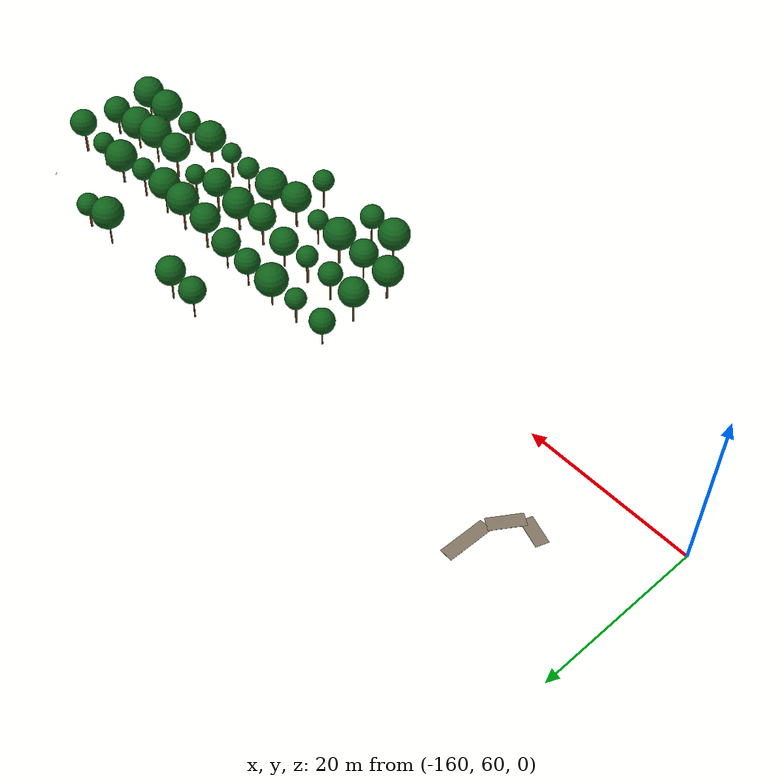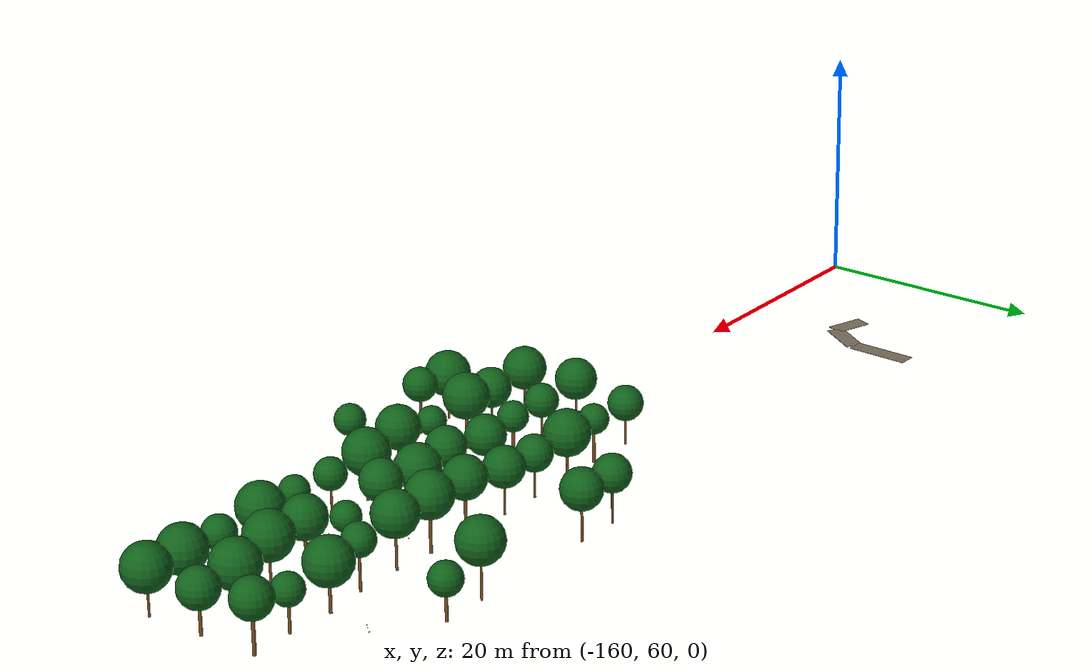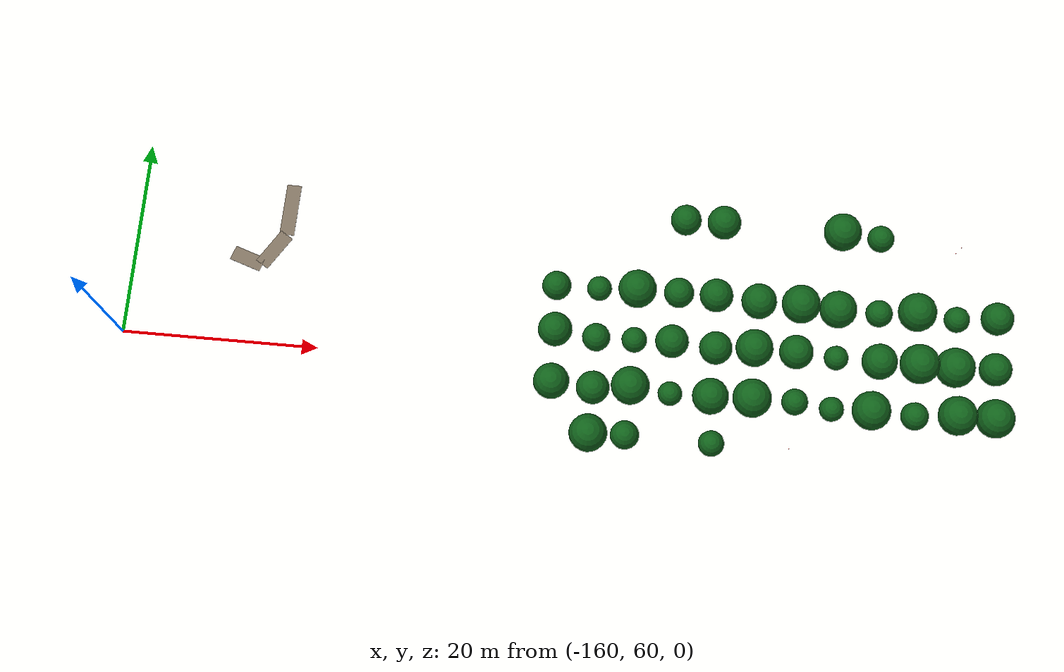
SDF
<sdf version="1.9">
 <world name="cheongsong_orchard">
  <model name="road_73">
   <static>true</static>
   <pose>-144.7 74.4 0.02 0 0 -1.5940</pose>
   <link name="link">
    <collision name="collision">
     <geometry><box><size>5.4 1.5 0.04</size></box></geometry>
     <surface><friction><ode><mu>0.9</mu><mu2>0.9</mu2></ode></friction></surface>
    </collision>
    <visual name="visual">
     <geometry><box><size>5.4 1.5 0.04</size></box></geometry>
     <material><ambient>0.4 0.35 0.28 1</ambient><diffuse>0.5 0.45 0.38 1</diffuse></material>
    </visual>
   </link>
  </model>
  <model name="road_74">
   <static>true</static>
   <pose>-145.8 70.0 0.02 0 0 -2.1415</pose>
   <link name="link">
    <collision name="collision">
     <geometry><box><size>4.0 1.5 0.04</size></box></geometry>
     <surface><friction><ode><mu>0.9</mu><mu2>0.9</mu2></ode></friction></surface>
    </collision>
    <visual name="visual">
     <geometry><box><size>4.0 1.5 0.04</size></box></geometry>
     <material><ambient>0.4 0.35 0.28 1</ambient><diffuse>0.5 0.45 0.38 1</diffuse></material>
    </visual>
   </link>
  </model>
  <model name="road_75">
   <static>true</static>
   <pose>-148.4 68.8 0.02 0 0 2.8233</pose>
   <link name="link">
    <collision name="collision">
     <geometry><box><size>3.3 1.5 0.04</size></box></geometry>
     <surface><friction><ode><mu>0.9</mu><mu2>0.9</mu2></ode></friction></surface>
    </collision>
    <visual name="visual">
     <geometry><box><size>3.3 1.5 0.04</size></box></geometry>
     <material><ambient>0.4 0.35 0.28 1</ambient><diffuse>0.5 0.45 0.38 1</diffuse></material>
    </visual>
   </link>
  </model>
  <model name="apple_tree_1745">
   <static>true</static>
   <pose>-111.97 53.02 0 0 0 0</pose>
   <link name="link">
    <collision name="trunk_col">
     <pose>0 0 1.05 0 0 0</pose>
     <geometry><cylinder><radius>0.106</radius><length>2.11</length></cylinder></geometry>
    </collision>
    <visual name="trunk_vis">
     <pose>0 0 1.05 0 0 0</pose>
     <geometry><cylinder><radius>0.106</radius><length>2.11</length></cylinder></geometry>
     <material><ambient>0.35 0.22 0.08 1</ambient><diffuse>0.45 0.30 0.12 1</diffuse></material>
    </visual>
    <collision name="canopy_col">
     <pose>0 0 4.01 0 0 0</pose>
     <geometry><sphere><radius>1.90</radius></sphere></geometry>
    </collision>
    <visual name="canopy_vis">
     <pose>0 0 4.01 0 0 0</pose>
     <geometry><sphere><radius>1.90</radius></sphere></geometry>
     <material><ambient>0.04 0.28 0.06 1</ambient><diffuse>0.06 0.38 0.10 1</diffuse></material>
    </visual>
   </link>
  </model>
  <model name="apple_tree_1746">
   <static>true</static>
   <pose>-108.38 53.07 0 0 0 0</pose>
   <link name="link">
    <collision name="trunk_col">
     <pose>0 0 1.42 0 0 0</pose>
     <geometry><cylinder><radius>0.103</radius><length>2.85</length></cylinder></geometry>
    </collision>
    <visual name="trunk_vis">
     <pose>0 0 1.42 0 0 0</pose>
     <geometry><cylinder><radius>0.103</radius><length>2.85</length></cylinder></geometry>
     <material><ambient>0.35 0.22 0.08 1</ambient><diffuse>0.45 0.30 0.12 1</diffuse></material>
    </visual>
    <collision name="canopy_col">
     <pose>0 0 4.28 0 0 0</pose>
     <geometry><sphere><radius>1.43</radius></sphere></geometry>
    </collision>
    <visual name="canopy_vis">
     <pose>0 0 4.28 0 0 0</pose>
     <geometry><sphere><radius>1.43</radius></sphere></geometry>
     <material><ambient>0.04 0.28 0.06 1</ambient><diffuse>0.06 0.38 0.10 1</diffuse></material>
    </visual>
   </link>
  </model>
  <model name="apple_tree_1748">
   <static>true</static>
   <pose>-99.90 52.99 0 0 0 0</pose>
   <link name="link">
    <collision name="trunk_col">
     <pose>0 0 1.45 0 0 0</pose>
     <geometry><cylinder><radius>0.115</radius><length>2.90</length></cylinder></geometry>
    </collision>
    <visual name="trunk_vis">
     <pose>0 0 1.45 0 0 0</pose>
     <geometry><cylinder><radius>0.115</radius><length>2.90</length></cylinder></geometry>
     <material><ambient>0.35 0.22 0.08 1</ambient><diffuse>0.45 0.30 0.12 1</diffuse></material>
    </visual>
    <collision name="canopy_col">
     <pose>0 0 4.19 0 0 0</pose>
     <geometry><sphere><radius>1.29</radius></sphere></geometry>
    </collision>
    <visual name="canopy_vis">
     <pose>0 0 4.19 0 0 0</pose>
     <geometry><sphere><radius>1.29</radius></sphere></geometry>
     <material><ambient>0.04 0.28 0.06 1</ambient><diffuse>0.06 0.38 0.10 1</diffuse></material>
    </visual>
   </link>
  </model>
  <model name="apple_tree_1800">
   <static>true</static>
   <pose>-116.02 57.81 0 0 0 0</pose>
   <link name="link">
    <collision name="trunk_col">
     <pose>0 0 1.26 0 0 0</pose>
     <geometry><cylinder><radius>0.124</radius><length>2.51</length></cylinder></geometry>
    </collision>
    <visual name="trunk_vis">
     <pose>0 0 1.26 0 0 0</pose>
     <geometry><cylinder><radius>0.124</radius><length>2.51</length></cylinder></geometry>
     <material><ambient>0.35 0.22 0.08 1</ambient><diffuse>0.45 0.30 0.12 1</diffuse></material>
    </visual>
    <collision name="canopy_col">
     <pose>0 0 4.30 0 0 0</pose>
     <geometry><sphere><radius>1.79</radius></sphere></geometry>
    </collision>
    <visual name="canopy_vis">
     <pose>0 0 4.30 0 0 0</pose>
     <geometry><sphere><radius>1.79</radius></sphere></geometry>
     <material><ambient>0.04 0.28 0.06 1</ambient><diffuse>0.06 0.38 0.10 1</diffuse></material>
    </visual>
   </link>
  </model>
  <model name="apple_tree_1801">
   <static>true</static>
   <pose>-111.89 57.60 0 0 0 0</pose>
   <link name="link">
    <collision name="trunk_col">
     <pose>0 0 1.14 0 0 0</pose>
     <geometry><cylinder><radius>0.093</radius><length>2.27</length></cylinder></geometry>
    </collision>
    <visual name="trunk_vis">
     <pose>0 0 1.14 0 0 0</pose>
     <geometry><cylinder><radius>0.093</radius><length>2.27</length></cylinder></geometry>
     <material><ambient>0.35 0.22 0.08 1</ambient><diffuse>0.45 0.30 0.12 1</diffuse></material>
    </visual>
    <collision name="canopy_col">
     <pose>0 0 3.93 0 0 0</pose>
     <geometry><sphere><radius>1.66</radius></sphere></geometry>
    </collision>
    <visual name="canopy_vis">
     <pose>0 0 3.93 0 0 0</pose>
     <geometry><sphere><radius>1.66</radius></sphere></geometry>
     <material><ambient>0.04 0.28 0.06 1</ambient><diffuse>0.06 0.38 0.10 1</diffuse></material>
    </visual>
   </link>
  </model>
  <model name="apple_tree_1802">
   <static>true</static>
   <pose>-108.22 57.98 0 0 0 0</pose>
   <link name="link">
    <collision name="trunk_col">
     <pose>0 0 1.34 0 0 0</pose>
     <geometry><cylinder><radius>0.146</radius><length>2.67</length></cylinder></geometry>
    </collision>
    <visual name="trunk_vis">
     <pose>0 0 1.34 0 0 0</pose>
     <geometry><cylinder><radius>0.146</radius><length>2.67</length></cylinder></geometry>
     <material><ambient>0.35 0.22 0.08 1</ambient><diffuse>0.45 0.30 0.12 1</diffuse></material>
    </visual>
    <collision name="canopy_col">
     <pose>0 0 4.58 0 0 0</pose>
     <geometry><sphere><radius>1.91</radius></sphere></geometry>
    </collision>
    <visual name="canopy_vis">
     <pose>0 0 4.58 0 0 0</pose>
     <geometry><sphere><radius>1.91</radius></sphere></geometry>
     <material><ambient>0.04 0.28 0.06 1</ambient><diffuse>0.06 0.38 0.10 1</diffuse></material>
    </visual>
   </link>
  </model>
  <model name="apple_tree_1803">
   <static>true</static>
   <pose>-104.25 57.69 0 0 0 0</pose>
   <link name="link">
    <collision name="trunk_col">
     <pose>0 0 1.28 0 0 0</pose>
     <geometry><cylinder><radius>0.107</radius><length>2.56</length></cylinder></geometry>
    </collision>
    <visual name="trunk_vis">
     <pose>0 0 1.28 0 0 0</pose>
     <geometry><cylinder><radius>0.107</radius><length>2.56</length></cylinder></geometry>
     <material><ambient>0.35 0.22 0.08 1</ambient><diffuse>0.45 0.30 0.12 1</diffuse></material>
    </visual>
    <collision name="canopy_col">
     <pose>0 0 3.76 0 0 0</pose>
     <geometry><sphere><radius>1.21</radius></sphere></geometry>
    </collision>
    <visual name="canopy_vis">
     <pose>0 0 3.76 0 0 0</pose>
     <geometry><sphere><radius>1.21</radius></sphere></geometry>
     <material><ambient>0.04 0.28 0.06 1</ambient><diffuse>0.06 0.38 0.10 1</diffuse></material>
    </visual>
   </link>
  </model>
  <model name="apple_tree_1804">
   <static>true</static>
   <pose>-100.30 57.60 0 0 0 0</pose>
   <link name="link">
    <collision name="trunk_col">
     <pose>0 0 1.39 0 0 0</pose>
     <geometry><cylinder><radius>0.121</radius><length>2.78</length></cylinder></geometry>
    </collision>
    <visual name="trunk_vis">
     <pose>0 0 1.39 0 0 0</pose>
     <geometry><cylinder><radius>0.121</radius><length>2.78</length></cylinder></geometry>
     <material><ambient>0.35 0.22 0.08 1</ambient><diffuse>0.45 0.30 0.12 1</diffuse></material>
    </visual>
    <collision name="canopy_col">
     <pose>0 0 4.60 0 0 0</pose>
     <geometry><sphere><radius>1.81</radius></sphere></geometry>
    </collision>
    <visual name="canopy_vis">
     <pose>0 0 4.60 0 0 0</pose>
     <geometry><sphere><radius>1.81</radius></sphere></geometry>
     <material><ambient>0.04 0.28 0.06 1</ambient><diffuse>0.06 0.38 0.10 1</diffuse></material>
    </visual>
   </link>
  </model>
  <model name="apple_tree_1805">
   <static>true</static>
   <pose>-96.17 57.90 0 0 0 0</pose>
   <link name="link">
    <collision name="trunk_col">
     <pose>0 0 1.07 0 0 0</pose>
     <geometry><cylinder><radius>0.138</radius><length>2.15</length></cylinder></geometry>
    </collision>
    <visual name="trunk_vis">
     <pose>0 0 1.07 0 0 0</pose>
     <geometry><cylinder><radius>0.138</radius><length>2.15</length></cylinder></geometry>
     <material><ambient>0.35 0.22 0.08 1</ambient><diffuse>0.45 0.30 0.12 1</diffuse></material>
    </visual>
    <collision name="canopy_col">
     <pose>0 0 4.09 0 0 0</pose>
     <geometry><sphere><radius>1.94</radius></sphere></geometry>
    </collision>
    <visual name="canopy_vis">
     <pose>0 0 4.09 0 0 0</pose>
     <geometry><sphere><radius>1.94</radius></sphere></geometry>
     <material><ambient>0.04 0.28 0.06 1</ambient><diffuse>0.06 0.38 0.10 1</diffuse></material>
    </visual>
   </link>
  </model>
  <model name="apple_tree_1806">
   <static>true</static>
   <pose>-91.95 57.94 0 0 0 0</pose>
   <link name="link">
    <collision name="trunk_col">
     <pose>0 0 1.26 0 0 0</pose>
     <geometry><cylinder><radius>0.093</radius><length>2.51</length></cylinder></geometry>
    </collision>
    <visual name="trunk_vis">
     <pose>0 0 1.26 0 0 0</pose>
     <geometry><cylinder><radius>0.093</radius><length>2.51</length></cylinder></geometry>
     <material><ambient>0.35 0.22 0.08 1</ambient><diffuse>0.45 0.30 0.12 1</diffuse></material>
    </visual>
    <collision name="canopy_col">
     <pose>0 0 3.83 0 0 0</pose>
     <geometry><sphere><radius>1.32</radius></sphere></geometry>
    </collision>
    <visual name="canopy_vis">
     <pose>0 0 3.83 0 0 0</pose>
     <geometry><sphere><radius>1.32</radius></sphere></geometry>
     <material><ambient>0.04 0.28 0.06 1</ambient><diffuse>0.06 0.38 0.10 1</diffuse></material>
    </visual>
   </link>
  </model>
  <model name="apple_tree_1807">
   <static>true</static>
   <pose>-88.30 57.57 0 0 0 0</pose>
   <link name="link">
    <collision name="trunk_col">
     <pose>0 0 1.24 0 0 0</pose>
     <geometry><cylinder><radius>0.146</radius><length>2.47</length></cylinder></geometry>
    </collision>
    <visual name="trunk_vis">
     <pose>0 0 1.24 0 0 0</pose>
     <geometry><cylinder><radius>0.146</radius><length>2.47</length></cylinder></geometry>
     <material><ambient>0.35 0.22 0.08 1</ambient><diffuse>0.45 0.30 0.12 1</diffuse></material>
    </visual>
    <collision name="canopy_col">
     <pose>0 0 3.70 0 0 0</pose>
     <geometry><sphere><radius>1.23</radius></sphere></geometry>
    </collision>
    <visual name="canopy_vis">
     <pose>0 0 3.70 0 0 0</pose>
     <geometry><sphere><radius>1.23</radius></sphere></geometry>
     <material><ambient>0.04 0.28 0.06 1</ambient><diffuse>0.06 0.38 0.10 1</diffuse></material>
    </visual>
   </link>
  </model>
  <model name="apple_tree_1808">
   <static>true</static>
   <pose>-84.41 57.72 0 0 0 0</pose>
   <link name="link">
    <collision name="trunk_col">
     <pose>0 0 1.01 0 0 0</pose>
     <geometry><cylinder><radius>0.141</radius><length>2.02</length></cylinder></geometry>
    </collision>
    <visual name="trunk_vis">
     <pose>0 0 1.01 0 0 0</pose>
     <geometry><cylinder><radius>0.141</radius><length>2.02</length></cylinder></geometry>
     <material><ambient>0.35 0.22 0.08 1</ambient><diffuse>0.45 0.30 0.12 1</diffuse></material>
    </visual>
    <collision name="canopy_col">
     <pose>0 0 3.96 0 0 0</pose>
     <geometry><sphere><radius>1.94</radius></sphere></geometry>
    </collision>
    <visual name="canopy_vis">
     <pose>0 0 3.96 0 0 0</pose>
     <geometry><sphere><radius>1.94</radius></sphere></geometry>
     <material><ambient>0.04 0.28 0.06 1</ambient><diffuse>0.06 0.38 0.10 1</diffuse></material>
    </visual>
   </link>
  </model>
  <model name="apple_tree_1809">
   <static>true</static>
   <pose>-80.09 57.63 0 0 0 0</pose>
   <link name="link">
    <collision name="trunk_col">
     <pose>0 0 1.05 0 0 0</pose>
     <geometry><cylinder><radius>0.149</radius><length>2.11</length></cylinder></geometry>
    </collision>
    <visual name="trunk_vis">
     <pose>0 0 1.05 0 0 0</pose>
     <geometry><cylinder><radius>0.149</radius><length>2.11</length></cylinder></geometry>
     <material><ambient>0.35 0.22 0.08 1</ambient><diffuse>0.45 0.30 0.12 1</diffuse></material>
    </visual>
    <collision name="canopy_col">
     <pose>0 0 3.50 0 0 0</pose>
     <geometry><sphere><radius>1.39</radius></sphere></geometry>
    </collision>
    <visual name="canopy_vis">
     <pose>0 0 3.50 0 0 0</pose>
     <geometry><sphere><radius>1.39</radius></sphere></geometry>
     <material><ambient>0.04 0.28 0.06 1</ambient><diffuse>0.06 0.38 0.10 1</diffuse></material>
    </visual>
   </link>
  </model>
  <model name="apple_tree_1810">
   <static>true</static>
   <pose>-75.94 57.97 0 0 0 0</pose>
   <link name="link">
    <collision name="trunk_col">
     <pose>0 0 0.99 0 0 0</pose>
     <geometry><cylinder><radius>0.141</radius><length>1.98</length></cylinder></geometry>
    </collision>
    <visual name="trunk_vis">
     <pose>0 0 0.99 0 0 0</pose>
     <geometry><cylinder><radius>0.141</radius><length>1.98</length></cylinder></geometry>
     <material><ambient>0.35 0.22 0.08 1</ambient><diffuse>0.45 0.30 0.12 1</diffuse></material>
    </visual>
    <collision name="canopy_col">
     <pose>0 0 3.93 0 0 0</pose>
     <geometry><sphere><radius>1.96</radius></sphere></geometry>
    </collision>
    <visual name="canopy_vis">
     <pose>0 0 3.93 0 0 0</pose>
     <geometry><sphere><radius>1.96</radius></sphere></geometry>
     <material><ambient>0.04 0.28 0.06 1</ambient><diffuse>0.06 0.38 0.10 1</diffuse></material>
    </visual>
   </link>
  </model>
  <model name="apple_tree_1811">
   <static>true</static>
   <pose>-72.26 58.00 0 0 0 0</pose>
   <link name="link">
    <collision name="trunk_col">
     <pose>0 0 1.02 0 0 0</pose>
     <geometry><cylinder><radius>0.092</radius><length>2.04</length></cylinder></geometry>
    </collision>
    <visual name="trunk_vis">
     <pose>0 0 1.02 0 0 0</pose>
     <geometry><cylinder><radius>0.092</radius><length>2.04</length></cylinder></geometry>
     <material><ambient>0.35 0.22 0.08 1</ambient><diffuse>0.45 0.30 0.12 1</diffuse></material>
    </visual>
    <collision name="canopy_col">
     <pose>0 0 3.97 0 0 0</pose>
     <geometry><sphere><radius>1.93</radius></sphere></geometry>
    </collision>
    <visual name="canopy_vis">
     <pose>0 0 3.97 0 0 0</pose>
     <geometry><sphere><radius>1.93</radius></sphere></geometry>
     <material><ambient>0.04 0.28 0.06 1</ambient><diffuse>0.06 0.38 0.10 1</diffuse></material>
    </visual>
   </link>
  </model>
  <model name="apple_tree_1856">
   <static>true</static>
   <pose>-116.09 63.01 0 0 0 0</pose>
   <link name="link">
    <collision name="trunk_col">
     <pose>0 0 1.44 0 0 0</pose>
     <geometry><cylinder><radius>0.110</radius><length>2.89</length></cylinder></geometry>
    </collision>
    <visual name="trunk_vis">
     <pose>0 0 1.44 0 0 0</pose>
     <geometry><cylinder><radius>0.110</radius><length>2.89</length></cylinder></geometry>
     <material><ambient>0.35 0.22 0.08 1</ambient><diffuse>0.45 0.30 0.12 1</diffuse></material>
    </visual>
    <collision name="canopy_col">
     <pose>0 0 4.60 0 0 0</pose>
     <geometry><sphere><radius>1.71</radius></sphere></geometry>
    </collision>
    <visual name="canopy_vis">
     <pose>0 0 4.60 0 0 0</pose>
     <geometry><sphere><radius>1.71</radius></sphere></geometry>
     <material><ambient>0.04 0.28 0.06 1</ambient><diffuse>0.06 0.38 0.10 1</diffuse></material>
    </visual>
   </link>
  </model>
  <model name="apple_tree_1857">
   <static>true</static>
   <pose>-111.97 62.68 0 0 0 0</pose>
   <link name="link">
    <collision name="trunk_col">
     <pose>0 0 1.33 0 0 0</pose>
     <geometry><cylinder><radius>0.099</radius><length>2.66</length></cylinder></geometry>
    </collision>
    <visual name="trunk_vis">
     <pose>0 0 1.33 0 0 0</pose>
     <geometry><cylinder><radius>0.099</radius><length>2.66</length></cylinder></geometry>
     <material><ambient>0.35 0.22 0.08 1</ambient><diffuse>0.45 0.30 0.12 1</diffuse></material>
    </visual>
    <collision name="canopy_col">
     <pose>0 0 4.06 0 0 0</pose>
     <geometry><sphere><radius>1.40</radius></sphere></geometry>
    </collision>
    <visual name="canopy_vis">
     <pose>0 0 4.06 0 0 0</pose>
     <geometry><sphere><radius>1.40</radius></sphere></geometry>
     <material><ambient>0.04 0.28 0.06 1</ambient><diffuse>0.06 0.38 0.10 1</diffuse></material>
    </visual>
   </link>
  </model>
  <model name="apple_tree_1858">
   <static>true</static>
   <pose>-108.18 62.76 0 0 0 0</pose>
   <link name="link">
    <collision name="trunk_col">
     <pose>0 0 1.38 0 0 0</pose>
     <geometry><cylinder><radius>0.149</radius><length>2.77</length></cylinder></geometry>
    </collision>
    <visual name="trunk_vis">
     <pose>0 0 1.38 0 0 0</pose>
     <geometry><cylinder><radius>0.149</radius><length>2.77</length></cylinder></geometry>
     <material><ambient>0.35 0.22 0.08 1</ambient><diffuse>0.45 0.30 0.12 1</diffuse></material>
    </visual>
    <collision name="canopy_col">
     <pose>0 0 4.03 0 0 0</pose>
     <geometry><sphere><radius>1.27</radius></sphere></geometry>
    </collision>
    <visual name="canopy_vis">
     <pose>0 0 4.03 0 0 0</pose>
     <geometry><sphere><radius>1.27</radius></sphere></geometry>
     <material><ambient>0.04 0.28 0.06 1</ambient><diffuse>0.06 0.38 0.10 1</diffuse></material>
    </visual>
   </link>
  </model>
  <model name="apple_tree_1859">
   <static>true</static>
   <pose>-104.43 62.99 0 0 0 0</pose>
   <link name="link">
    <collision name="trunk_col">
     <pose>0 0 1.09 0 0 0</pose>
     <geometry><cylinder><radius>0.115</radius><length>2.19</length></cylinder></geometry>
    </collision>
    <visual name="trunk_vis">
     <pose>0 0 1.09 0 0 0</pose>
     <geometry><cylinder><radius>0.115</radius><length>2.19</length></cylinder></geometry>
     <material><ambient>0.35 0.22 0.08 1</ambient><diffuse>0.45 0.30 0.12 1</diffuse></material>
    </visual>
    <collision name="canopy_col">
     <pose>0 0 3.86 0 0 0</pose>
     <geometry><sphere><radius>1.67</radius></sphere></geometry>
    </collision>
    <visual name="canopy_vis">
     <pose>0 0 3.86 0 0 0</pose>
     <geometry><sphere><radius>1.67</radius></sphere></geometry>
     <material><ambient>0.04 0.28 0.06 1</ambient><diffuse>0.06 0.38 0.10 1</diffuse></material>
    </visual>
   </link>
  </model>
  <model name="apple_tree_1860">
   <static>true</static>
   <pose>-100.09 62.57 0 0 0 0</pose>
   <link name="link">
    <collision name="trunk_col">
     <pose>0 0 1.36 0 0 0</pose>
     <geometry><cylinder><radius>0.130</radius><length>2.71</length></cylinder></geometry>
    </collision>
    <visual name="trunk_vis">
     <pose>0 0 1.36 0 0 0</pose>
     <geometry><cylinder><radius>0.130</radius><length>2.71</length></cylinder></geometry>
     <material><ambient>0.35 0.22 0.08 1</ambient><diffuse>0.45 0.30 0.12 1</diffuse></material>
    </visual>
    <collision name="canopy_col">
     <pose>0 0 4.36 0 0 0</pose>
     <geometry><sphere><radius>1.65</radius></sphere></geometry>
    </collision>
    <visual name="canopy_vis">
     <pose>0 0 4.36 0 0 0</pose>
     <geometry><sphere><radius>1.65</radius></sphere></geometry>
     <material><ambient>0.04 0.28 0.06 1</ambient><diffuse>0.06 0.38 0.10 1</diffuse></material>
    </visual>
   </link>
  </model>
  <model name="apple_tree_1861">
   <static>true</static>
   <pose>-96.25 62.96 0 0 0 0</pose>
   <link name="link">
    <collision name="trunk_col">
     <pose>0 0 1.14 0 0 0</pose>
     <geometry><cylinder><radius>0.135</radius><length>2.29</length></cylinder></geometry>
    </collision>
    <visual name="trunk_vis">
     <pose>0 0 1.14 0 0 0</pose>
     <geometry><cylinder><radius>0.135</radius><length>2.29</length></cylinder></geometry>
     <material><ambient>0.35 0.22 0.08 1</ambient><diffuse>0.45 0.30 0.12 1</diffuse></material>
    </visual>
    <collision name="canopy_col">
     <pose>0 0 4.17 0 0 0</pose>
     <geometry><sphere><radius>1.88</radius></sphere></geometry>
    </collision>
    <visual name="canopy_vis">
     <pose>0 0 4.17 0 0 0</pose>
     <geometry><sphere><radius>1.88</radius></sphere></geometry>
     <material><ambient>0.04 0.28 0.06 1</ambient><diffuse>0.06 0.38 0.10 1</diffuse></material>
    </visual>
   </link>
  </model>
  <model name="apple_tree_1862">
   <static>true</static>
   <pose>-92.15 62.82 0 0 0 0</pose>
   <link name="link">
    <collision name="trunk_col">
     <pose>0 0 1.43 0 0 0</pose>
     <geometry><cylinder><radius>0.137</radius><length>2.87</length></cylinder></geometry>
    </collision>
    <visual name="trunk_vis">
     <pose>0 0 1.43 0 0 0</pose>
     <geometry><cylinder><radius>0.137</radius><length>2.87</length></cylinder></geometry>
     <material><ambient>0.35 0.22 0.08 1</ambient><diffuse>0.45 0.30 0.12 1</diffuse></material>
    </visual>
    <collision name="canopy_col">
     <pose>0 0 4.57 0 0 0</pose>
     <geometry><sphere><radius>1.70</radius></sphere></geometry>
    </collision>
    <visual name="canopy_vis">
     <pose>0 0 4.57 0 0 0</pose>
     <geometry><sphere><radius>1.70</radius></sphere></geometry>
     <material><ambient>0.04 0.28 0.06 1</ambient><diffuse>0.06 0.38 0.10 1</diffuse></material>
    </visual>
   </link>
  </model>
  <model name="apple_tree_1863">
   <static>true</static>
   <pose>-88.02 62.91 0 0 0 0</pose>
   <link name="link">
    <collision name="trunk_col">
     <pose>0 0 0.99 0 0 0</pose>
     <geometry><cylinder><radius>0.120</radius><length>1.97</length></cylinder></geometry>
    </collision>
    <visual name="trunk_vis">
     <pose>0 0 0.99 0 0 0</pose>
     <geometry><cylinder><radius>0.120</radius><length>1.97</length></cylinder></geometry>
     <material><ambient>0.35 0.22 0.08 1</ambient><diffuse>0.45 0.30 0.12 1</diffuse></material>
    </visual>
    <collision name="canopy_col">
     <pose>0 0 3.19 0 0 0</pose>
     <geometry><sphere><radius>1.22</radius></sphere></geometry>
    </collision>
    <visual name="canopy_vis">
     <pose>0 0 3.19 0 0 0</pose>
     <geometry><sphere><radius>1.22</radius></sphere></geometry>
     <material><ambient>0.04 0.28 0.06 1</ambient><diffuse>0.06 0.38 0.10 1</diffuse></material>
    </visual>
   </link>
  </model>
  <model name="apple_tree_1864">
   <static>true</static>
   <pose>-83.92 62.57 0 0 0 0</pose>
   <link name="link">
    <collision name="trunk_col">
     <pose>0 0 1.42 0 0 0</pose>
     <geometry><cylinder><radius>0.136</radius><length>2.85</length></cylinder></geometry>
    </collision>
    <visual name="trunk_vis">
     <pose>0 0 1.42 0 0 0</pose>
     <geometry><cylinder><radius>0.136</radius><length>2.85</length></cylinder></geometry>
     <material><ambient>0.35 0.22 0.08 1</ambient><diffuse>0.45 0.30 0.12 1</diffuse></material>
    </visual>
    <collision name="canopy_col">
     <pose>0 0 4.63 0 0 0</pose>
     <geometry><sphere><radius>1.78</radius></sphere></geometry>
    </collision>
    <visual name="canopy_vis">
     <pose>0 0 4.63 0 0 0</pose>
     <geometry><sphere><radius>1.78</radius></sphere></geometry>
     <material><ambient>0.04 0.28 0.06 1</ambient><diffuse>0.06 0.38 0.10 1</diffuse></material>
    </visual>
   </link>
  </model>
  <model name="apple_tree_1865">
   <static>true</static>
   <pose>-79.98 62.66 0 0 0 0</pose>
   <link name="link">
    <collision name="trunk_col">
     <pose>0 0 1.37 0 0 0</pose>
     <geometry><cylinder><radius>0.104</radius><length>2.75</length></cylinder></geometry>
    </collision>
    <visual name="trunk_vis">
     <pose>0 0 1.37 0 0 0</pose>
     <geometry><cylinder><radius>0.104</radius><length>2.75</length></cylinder></geometry>
     <material><ambient>0.35 0.22 0.08 1</ambient><diffuse>0.45 0.30 0.12 1</diffuse></material>
    </visual>
    <collision name="canopy_col">
     <pose>0 0 4.73 0 0 0</pose>
     <geometry><sphere><radius>1.98</radius></sphere></geometry>
    </collision>
    <visual name="canopy_vis">
     <pose>0 0 4.73 0 0 0</pose>
     <geometry><sphere><radius>1.98</radius></sphere></geometry>
     <material><ambient>0.04 0.28 0.06 1</ambient><diffuse>0.06 0.38 0.10 1</diffuse></material>
    </visual>
   </link>
  </model>
  <model name="apple_tree_1866">
   <static>true</static>
   <pose>-76.34 62.78 0 0 0 0</pose>
   <link name="link">
    <collision name="trunk_col">
     <pose>0 0 1.00 0 0 0</pose>
     <geometry><cylinder><radius>0.112</radius><length>2.00</length></cylinder></geometry>
    </collision>
    <visual name="trunk_vis">
     <pose>0 0 1.00 0 0 0</pose>
     <geometry><cylinder><radius>0.112</radius><length>2.00</length></cylinder></geometry>
     <material><ambient>0.35 0.22 0.08 1</ambient><diffuse>0.45 0.30 0.12 1</diffuse></material>
    </visual>
    <collision name="canopy_col">
     <pose>0 0 3.99 0 0 0</pose>
     <geometry><sphere><radius>1.99</radius></sphere></geometry>
    </collision>
    <visual name="canopy_vis">
     <pose>0 0 3.99 0 0 0</pose>
     <geometry><sphere><radius>1.99</radius></sphere></geometry>
     <material><ambient>0.04 0.28 0.06 1</ambient><diffuse>0.06 0.38 0.10 1</diffuse></material>
    </visual>
   </link>
  </model>
  <model name="apple_tree_1867">
   <static>true</static>
   <pose>-72.33 62.99 0 0 0 0</pose>
   <link name="link">
    <collision name="trunk_col">
     <pose>0 0 1.08 0 0 0</pose>
     <geometry><cylinder><radius>0.134</radius><length>2.15</length></cylinder></geometry>
    </collision>
    <visual name="trunk_vis">
     <pose>0 0 1.08 0 0 0</pose>
     <geometry><cylinder><radius>0.134</radius><length>2.15</length></cylinder></geometry>
     <material><ambient>0.35 0.22 0.08 1</ambient><diffuse>0.45 0.30 0.12 1</diffuse></material>
    </visual>
    <collision name="canopy_col">
     <pose>0 0 3.79 0 0 0</pose>
     <geometry><sphere><radius>1.64</radius></sphere></geometry>
    </collision>
    <visual name="canopy_vis">
     <pose>0 0 3.79 0 0 0</pose>
     <geometry><sphere><radius>1.64</radius></sphere></geometry>
     <material><ambient>0.04 0.28 0.06 1</ambient><diffuse>0.06 0.38 0.10 1</diffuse></material>
    </visual>
   </link>
  </model>
  <model name="apple_tree_1913">
   <static>true</static>
   <pose>-116.36 67.78 0 0 0 0</pose>
   <link name="link">
    <collision name="trunk_col">
     <pose>0 0 1.07 0 0 0</pose>
     <geometry><cylinder><radius>0.096</radius><length>2.13</length></cylinder></geometry>
    </collision>
    <visual name="trunk_vis">
     <pose>0 0 1.07 0 0 0</pose>
     <geometry><cylinder><radius>0.096</radius><length>2.13</length></cylinder></geometry>
     <material><ambient>0.35 0.22 0.08 1</ambient><diffuse>0.45 0.30 0.12 1</diffuse></material>
    </visual>
    <collision name="canopy_col">
     <pose>0 0 3.59 0 0 0</pose>
     <geometry><sphere><radius>1.46</radius></sphere></geometry>
    </collision>
    <visual name="canopy_vis">
     <pose>0 0 3.59 0 0 0</pose>
     <geometry><sphere><radius>1.46</radius></sphere></geometry>
     <material><ambient>0.04 0.28 0.06 1</ambient><diffuse>0.06 0.38 0.10 1</diffuse></material>
    </visual>
   </link>
  </model>
  <model name="apple_tree_1914">
   <static>true</static>
   <pose>-112.06 67.81 0 0 0 0</pose>
   <link name="link">
    <collision name="trunk_col">
     <pose>0 0 1.25 0 0 0</pose>
     <geometry><cylinder><radius>0.123</radius><length>2.51</length></cylinder></geometry>
    </collision>
    <visual name="trunk_vis">
     <pose>0 0 1.25 0 0 0</pose>
     <geometry><cylinder><radius>0.123</radius><length>2.51</length></cylinder></geometry>
     <material><ambient>0.35 0.22 0.08 1</ambient><diffuse>0.45 0.30 0.12 1</diffuse></material>
    </visual>
    <collision name="canopy_col">
     <pose>0 0 3.74 0 0 0</pose>
     <geometry><sphere><radius>1.24</radius></sphere></geometry>
    </collision>
    <visual name="canopy_vis">
     <pose>0 0 3.74 0 0 0</pose>
     <geometry><sphere><radius>1.24</radius></sphere></geometry>
     <material><ambient>0.04 0.28 0.06 1</ambient><diffuse>0.06 0.38 0.10 1</diffuse></material>
    </visual>
   </link>
  </model>
  <model name="apple_tree_1915">
   <static>true</static>
   <pose>-108.26 68.05 0 0 0 0</pose>
   <link name="link">
    <collision name="trunk_col">
     <pose>0 0 1.03 0 0 0</pose>
     <geometry><cylinder><radius>0.100</radius><length>2.06</length></cylinder></geometry>
    </collision>
    <visual name="trunk_vis">
     <pose>0 0 1.03 0 0 0</pose>
     <geometry><cylinder><radius>0.100</radius><length>2.06</length></cylinder></geometry>
     <material><ambient>0.35 0.22 0.08 1</ambient><diffuse>0.45 0.30 0.12 1</diffuse></material>
    </visual>
    <collision name="canopy_col">
     <pose>0 0 3.99 0 0 0</pose>
     <geometry><sphere><radius>1.92</radius></sphere></geometry>
    </collision>
    <visual name="canopy_vis">
     <pose>0 0 3.99 0 0 0</pose>
     <geometry><sphere><radius>1.92</radius></sphere></geometry>
     <material><ambient>0.04 0.28 0.06 1</ambient><diffuse>0.06 0.38 0.10 1</diffuse></material>
    </visual>
   </link>
  </model>
  <model name="apple_tree_1916">
   <static>true</static>
   <pose>-104.09 68.06 0 0 0 0</pose>
   <link name="link">
    <collision name="trunk_col">
     <pose>0 0 1.14 0 0 0</pose>
     <geometry><cylinder><radius>0.092</radius><length>2.27</length></cylinder></geometry>
    </collision>
    <visual name="trunk_vis">
     <pose>0 0 1.14 0 0 0</pose>
     <geometry><cylinder><radius>0.092</radius><length>2.27</length></cylinder></geometry>
     <material><ambient>0.35 0.22 0.08 1</ambient><diffuse>0.45 0.30 0.12 1</diffuse></material>
    </visual>
    <collision name="canopy_col">
     <pose>0 0 3.78 0 0 0</pose>
     <geometry><sphere><radius>1.51</radius></sphere></geometry>
    </collision>
    <visual name="canopy_vis">
     <pose>0 0 3.78 0 0 0</pose>
     <geometry><sphere><radius>1.51</radius></sphere></geometry>
     <material><ambient>0.04 0.28 0.06 1</ambient><diffuse>0.06 0.38 0.10 1</diffuse></material>
    </visual>
   </link>
  </model>
  <model name="apple_tree_1917">
   <static>true</static>
   <pose>-100.35 68.06 0 0 0 0</pose>
   <link name="link">
    <collision name="trunk_col">
     <pose>0 0 1.17 0 0 0</pose>
     <geometry><cylinder><radius>0.091</radius><length>2.34</length></cylinder></geometry>
    </collision>
    <visual name="trunk_vis">
     <pose>0 0 1.17 0 0 0</pose>
     <geometry><cylinder><radius>0.091</radius><length>2.34</length></cylinder></geometry>
     <material><ambient>0.35 0.22 0.08 1</ambient><diffuse>0.45 0.30 0.12 1</diffuse></material>
    </visual>
    <collision name="canopy_col">
     <pose>0 0 4.02 0 0 0</pose>
     <geometry><sphere><radius>1.68</radius></sphere></geometry>
    </collision>
    <visual name="canopy_vis">
     <pose>0 0 4.02 0 0 0</pose>
     <geometry><sphere><radius>1.68</radius></sphere></geometry>
     <material><ambient>0.04 0.28 0.06 1</ambient><diffuse>0.06 0.38 0.10 1</diffuse></material>
    </visual>
   </link>
  </model>
  <model name="apple_tree_1918">
   <static>true</static>
   <pose>-96.12 67.67 0 0 0 0</pose>
   <link name="link">
    <collision name="trunk_col">
     <pose>0 0 1.42 0 0 0</pose>
     <geometry><cylinder><radius>0.128</radius><length>2.85</length></cylinder></geometry>
    </collision>
    <visual name="trunk_vis">
     <pose>0 0 1.42 0 0 0</pose>
     <geometry><cylinder><radius>0.128</radius><length>2.85</length></cylinder></geometry>
     <material><ambient>0.35 0.22 0.08 1</ambient><diffuse>0.45 0.30 0.12 1</diffuse></material>
    </visual>
    <collision name="canopy_col">
     <pose>0 0 4.62 0 0 0</pose>
     <geometry><sphere><radius>1.77</radius></sphere></geometry>
    </collision>
    <visual name="canopy_vis">
     <pose>0 0 4.62 0 0 0</pose>
     <geometry><sphere><radius>1.77</radius></sphere></geometry>
     <material><ambient>0.04 0.28 0.06 1</ambient><diffuse>0.06 0.38 0.10 1</diffuse></material>
    </visual>
   </link>
  </model>
  <model name="apple_tree_1919">
   <static>true</static>
   <pose>-91.95 67.70 0 0 0 0</pose>
   <link name="link">
    <collision name="trunk_col">
     <pose>0 0 1.43 0 0 0</pose>
     <geometry><cylinder><radius>0.126</radius><length>2.87</length></cylinder></geometry>
    </collision>
    <visual name="trunk_vis">
     <pose>0 0 1.43 0 0 0</pose>
     <geometry><cylinder><radius>0.126</radius><length>2.87</length></cylinder></geometry>
     <material><ambient>0.35 0.22 0.08 1</ambient><diffuse>0.45 0.30 0.12 1</diffuse></material>
    </visual>
    <collision name="canopy_col">
     <pose>0 0 4.80 0 0 0</pose>
     <geometry><sphere><radius>1.93</radius></sphere></geometry>
    </collision>
    <visual name="canopy_vis">
     <pose>0 0 4.80 0 0 0</pose>
     <geometry><sphere><radius>1.93</radius></sphere></geometry>
     <material><ambient>0.04 0.28 0.06 1</ambient><diffuse>0.06 0.38 0.10 1</diffuse></material>
    </visual>
   </link>
  </model>
  <model name="apple_tree_1920">
   <static>true</static>
   <pose>-88.24 67.52 0 0 0 0</pose>
   <link name="link">
    <collision name="trunk_col">
     <pose>0 0 1.38 0 0 0</pose>
     <geometry><cylinder><radius>0.106</radius><length>2.75</length></cylinder></geometry>
    </collision>
    <visual name="trunk_vis">
     <pose>0 0 1.38 0 0 0</pose>
     <geometry><cylinder><radius>0.106</radius><length>2.75</length></cylinder></geometry>
     <material><ambient>0.35 0.22 0.08 1</ambient><diffuse>0.45 0.30 0.12 1</diffuse></material>
    </visual>
    <collision name="canopy_col">
     <pose>0 0 4.63 0 0 0</pose>
     <geometry><sphere><radius>1.87</radius></sphere></geometry>
    </collision>
    <visual name="canopy_vis">
     <pose>0 0 4.63 0 0 0</pose>
     <geometry><sphere><radius>1.87</radius></sphere></geometry>
     <material><ambient>0.04 0.28 0.06 1</ambient><diffuse>0.06 0.38 0.10 1</diffuse></material>
    </visual>
   </link>
  </model>
  <model name="apple_tree_1921">
   <static>true</static>
   <pose>-84.11 67.58 0 0 0 0</pose>
   <link name="link">
    <collision name="trunk_col">
     <pose>0 0 1.41 0 0 0</pose>
     <geometry><cylinder><radius>0.114</radius><length>2.83</length></cylinder></geometry>
    </collision>
    <visual name="trunk_vis">
     <pose>0 0 1.41 0 0 0</pose>
     <geometry><cylinder><radius>0.114</radius><length>2.83</length></cylinder></geometry>
     <material><ambient>0.35 0.22 0.08 1</ambient><diffuse>0.45 0.30 0.12 1</diffuse></material>
    </visual>
    <collision name="canopy_col">
     <pose>0 0 4.18 0 0 0</pose>
     <geometry><sphere><radius>1.35</radius></sphere></geometry>
    </collision>
    <visual name="canopy_vis">
     <pose>0 0 4.18 0 0 0</pose>
     <geometry><sphere><radius>1.35</radius></sphere></geometry>
     <material><ambient>0.04 0.28 0.06 1</ambient><diffuse>0.06 0.38 0.10 1</diffuse></material>
    </visual>
   </link>
  </model>
  <model name="apple_tree_1922">
   <static>true</static>
   <pose>-80.29 68.08 0 0 0 0</pose>
   <link name="link">
    <collision name="trunk_col">
     <pose>0 0 1.10 0 0 0</pose>
     <geometry><cylinder><radius>0.128</radius><length>2.20</length></cylinder></geometry>
    </collision>
    <visual name="trunk_vis">
     <pose>0 0 1.10 0 0 0</pose>
     <geometry><cylinder><radius>0.128</radius><length>2.20</length></cylinder></geometry>
     <material><ambient>0.35 0.22 0.08 1</ambient><diffuse>0.45 0.30 0.12 1</diffuse></material>
    </visual>
    <collision name="canopy_col">
     <pose>0 0 4.14 0 0 0</pose>
     <geometry><sphere><radius>1.94</radius></sphere></geometry>
    </collision>
    <visual name="canopy_vis">
     <pose>0 0 4.14 0 0 0</pose>
     <geometry><sphere><radius>1.94</radius></sphere></geometry>
     <material><ambient>0.04 0.28 0.06 1</ambient><diffuse>0.06 0.38 0.10 1</diffuse></material>
    </visual>
   </link>
  </model>
  <model name="apple_tree_1923">
   <static>true</static>
   <pose>-76.25 67.83 0 0 0 0</pose>
   <link name="link">
    <collision name="trunk_col">
     <pose>0 0 1.11 0 0 0</pose>
     <geometry><cylinder><radius>0.120</radius><length>2.23</length></cylinder></geometry>
    </collision>
    <visual name="trunk_vis">
     <pose>0 0 1.11 0 0 0</pose>
     <geometry><cylinder><radius>0.120</radius><length>2.23</length></cylinder></geometry>
     <material><ambient>0.35 0.22 0.08 1</ambient><diffuse>0.45 0.30 0.12 1</diffuse></material>
    </visual>
    <collision name="canopy_col">
     <pose>0 0 3.51 0 0 0</pose>
     <geometry><sphere><radius>1.29</radius></sphere></geometry>
    </collision>
    <visual name="canopy_vis">
     <pose>0 0 3.51 0 0 0</pose>
     <geometry><sphere><radius>1.29</radius></sphere></geometry>
     <material><ambient>0.04 0.28 0.06 1</ambient><diffuse>0.06 0.38 0.10 1</diffuse></material>
    </visual>
   </link>
  </model>
  <model name="apple_tree_1924">
   <static>true</static>
   <pose>-72.42 68.00 0 0 0 0</pose>
   <link name="link">
    <collision name="trunk_col">
     <pose>0 0 1.41 0 0 0</pose>
     <geometry><cylinder><radius>0.147</radius><length>2.81</length></cylinder></geometry>
    </collision>
    <visual name="trunk_vis">
     <pose>0 0 1.41 0 0 0</pose>
     <geometry><cylinder><radius>0.147</radius><length>2.81</length></cylinder></geometry>
     <material><ambient>0.35 0.22 0.08 1</ambient><diffuse>0.45 0.30 0.12 1</diffuse></material>
    </visual>
    <collision name="canopy_col">
     <pose>0 0 4.46 0 0 0</pose>
     <geometry><sphere><radius>1.64</radius></sphere></geometry>
    </collision>
    <visual name="canopy_vis">
     <pose>0 0 4.46 0 0 0</pose>
     <geometry><sphere><radius>1.64</radius></sphere></geometry>
     <material><ambient>0.04 0.28 0.06 1</ambient><diffuse>0.06 0.38 0.10 1</diffuse></material>
    </visual>
   </link>
  </model>
  <model name="apple_tree_1973">
   <static>true</static>
   <pose>-103.93 75.62 0 0 0 0</pose>
   <link name="link">
    <collision name="trunk_col">
     <pose>0 0 1.33 0 0 0</pose>
     <geometry><cylinder><radius>0.086</radius><length>2.65</length></cylinder></geometry>
    </collision>
    <visual name="trunk_vis">
     <pose>0 0 1.33 0 0 0</pose>
     <geometry><cylinder><radius>0.086</radius><length>2.65</length></cylinder></geometry>
     <material><ambient>0.35 0.22 0.08 1</ambient><diffuse>0.45 0.30 0.12 1</diffuse></material>
    </visual>
    <collision name="canopy_col">
     <pose>0 0 4.20 0 0 0</pose>
     <geometry><sphere><radius>1.55</radius></sphere></geometry>
    </collision>
    <visual name="canopy_vis">
     <pose>0 0 4.20 0 0 0</pose>
     <geometry><sphere><radius>1.55</radius></sphere></geometry>
     <material><ambient>0.04 0.28 0.06 1</ambient><diffuse>0.06 0.38 0.10 1</diffuse></material>
    </visual>
   </link>
  </model>
  <model name="apple_tree_1974">
   <static>true</static>
   <pose>-100.08 75.64 0 0 0 0</pose>
   <link name="link">
    <collision name="trunk_col">
     <pose>0 0 1.32 0 0 0</pose>
     <geometry><cylinder><radius>0.107</radius><length>2.65</length></cylinder></geometry>
    </collision>
    <visual name="trunk_vis">
     <pose>0 0 1.32 0 0 0</pose>
     <geometry><cylinder><radius>0.107</radius><length>2.65</length></cylinder></geometry>
     <material><ambient>0.35 0.22 0.08 1</ambient><diffuse>0.45 0.30 0.12 1</diffuse></material>
    </visual>
    <collision name="canopy_col">
     <pose>0 0 4.35 0 0 0</pose>
     <geometry><sphere><radius>1.70</radius></sphere></geometry>
    </collision>
    <visual name="canopy_vis">
     <pose>0 0 4.35 0 0 0</pose>
     <geometry><sphere><radius>1.70</radius></sphere></geometry>
     <material><ambient>0.04 0.28 0.06 1</ambient><diffuse>0.06 0.38 0.10 1</diffuse></material>
    </visual>
   </link>
  </model>
  <model name="apple_tree_1977">
   <static>true</static>
   <pose>-88.18 75.56 0 0 0 0</pose>
   <link name="link">
    <collision name="trunk_col">
     <pose>0 0 1.45 0 0 0</pose>
     <geometry><cylinder><radius>0.098</radius><length>2.90</length></cylinder></geometry>
    </collision>
    <visual name="trunk_vis">
     <pose>0 0 1.45 0 0 0</pose>
     <geometry><cylinder><radius>0.098</radius><length>2.90</length></cylinder></geometry>
     <material><ambient>0.35 0.22 0.08 1</ambient><diffuse>0.45 0.30 0.12 1</diffuse></material>
    </visual>
    <collision name="canopy_col">
     <pose>0 0 4.80 0 0 0</pose>
     <geometry><sphere><radius>1.90</radius></sphere></geometry>
    </collision>
    <visual name="canopy_vis">
     <pose>0 0 4.80 0 0 0</pose>
     <geometry><sphere><radius>1.90</radius></sphere></geometry>
     <material><ambient>0.04 0.28 0.06 1</ambient><diffuse>0.06 0.38 0.10 1</diffuse></material>
    </visual>
   </link>
  </model>
  <model name="apple_tree_1978">
   <static>true</static>
   <pose>-84.14 75.62 0 0 0 0</pose>
   <link name="link">
    <collision name="trunk_col">
     <pose>0 0 1.04 0 0 0</pose>
     <geometry><cylinder><radius>0.133</radius><length>2.07</length></cylinder></geometry>
    </collision>
    <visual name="trunk_vis">
     <pose>0 0 1.04 0 0 0</pose>
     <geometry><cylinder><radius>0.133</radius><length>2.07</length></cylinder></geometry>
     <material><ambient>0.35 0.22 0.08 1</ambient><diffuse>0.45 0.30 0.12 1</diffuse></material>
    </visual>
    <collision name="canopy_col">
     <pose>0 0 3.42 0 0 0</pose>
     <geometry><sphere><radius>1.35</radius></sphere></geometry>
    </collision>
    <visual name="canopy_vis">
     <pose>0 0 3.42 0 0 0</pose>
     <geometry><sphere><radius>1.35</radius></sphere></geometry>
     <material><ambient>0.04 0.28 0.06 1</ambient><diffuse>0.06 0.38 0.10 1</diffuse></material>
    </visual>
   </link>
  </model>
  <model name="apple_1750_1">
   <static>true</static>
   <pose>-91.99 53.68 1.38 0 0 0</pose>
   <link name="link">
    <visual name="visual">
     <geometry><sphere><radius>0.04</radius></sphere></geometry>
     <material><ambient>0.7 0.05 0.02 1</ambient><diffuse>0.9 0.10 0.05 1</diffuse></material>
    </visual>
   </link>
  </model>
  <model name="apple_1800_0">
   <static>true</static>
   <pose>-115.24 58.32 1.94 0 0 0</pose>
   <link name="link">
    <visual name="visual">
     <geometry><sphere><radius>0.04</radius></sphere></geometry>
     <material><ambient>0.7 0.05 0.02 1</ambient><diffuse>0.9 0.10 0.05 1</diffuse></material>
    </visual>
   </link>
  </model>
  <model name="apple_1800_1">
   <static>true</static>
   <pose>-115.54 58.54 2.86 0 0 0</pose>
   <link name="link">
    <visual name="visual">
     <geometry><sphere><radius>0.04</radius></sphere></geometry>
     <material><ambient>0.7 0.05 0.02 1</ambient><diffuse>0.9 0.10 0.05 1</diffuse></material>
    </visual>
   </link>
  </model>
  <model name="apple_1800_2">
   <static>true</static>
   <pose>-116.76 57.43 2.61 0 0 0</pose>
   <link name="link">
    <visual name="visual">
     <geometry><sphere><radius>0.04</radius></sphere></geometry>
     <material><ambient>0.7 0.05 0.02 1</ambient><diffuse>0.9 0.10 0.05 1</diffuse></material>
    </visual>
   </link>
  </model>
  <model name="apple_1800_3">
   <static>true</static>
   <pose>-115.88 58.16 2.65 0 0 0</pose>
   <link name="link">
    <visual name="visual">
     <geometry><sphere><radius>0.04</radius></sphere></geometry>
     <material><ambient>0.7 0.05 0.02 1</ambient><diffuse>0.9 0.10 0.05 1</diffuse></material>
    </visual>
   </link>
  </model>
  <model name="apple_1800_4">
   <static>true</static>
   <pose>-115.67 57.05 2.91 0 0 0</pose>
   <link name="link">
    <visual name="visual">
     <geometry><sphere><radius>0.04</radius></sphere></geometry>
     <material><ambient>0.7 0.05 0.02 1</ambient><diffuse>0.9 0.10 0.05 1</diffuse></material>
    </visual>
   </link>
  </model>
  <model name="apple_1810_0">
   <static>true</static>
   <pose>-75.55 57.31 1.80 0 0 0</pose>
   <link name="link">
    <visual name="visual">
     <geometry><sphere><radius>0.04</radius></sphere></geometry>
     <material><ambient>0.7 0.05 0.02 1</ambient><diffuse>0.9 0.10 0.05 1</diffuse></material>
    </visual>
   </link>
  </model>
  <model name="apple_1810_1">
   <static>true</static>
   <pose>-75.98 56.74 1.72 0 0 0</pose>
   <link name="link">
    <visual name="visual">
     <geometry><sphere><radius>0.04</radius></sphere></geometry>
     <material><ambient>0.7 0.05 0.02 1</ambient><diffuse>0.9 0.10 0.05 1</diffuse></material>
    </visual>
   </link>
  </model>
  <model name="apple_1810_2">
   <static>true</static>
   <pose>-76.70 58.24 1.48 0 0 0</pose>
   <link name="link">
    <visual name="visual">
     <geometry><sphere><radius>0.04</radius></sphere></geometry>
     <material><ambient>0.7 0.05 0.02 1</ambient><diffuse>0.9 0.10 0.05 1</diffuse></material>
    </visual>
   </link>
  </model>
  <model name="apple_1860_0">
   <static>true</static>
   <pose>-100.68 63.16 3.12 0 0 0</pose>
   <link name="link">
    <visual name="visual">
     <geometry><sphere><radius>0.04</radius></sphere></geometry>
     <material><ambient>0.7 0.05 0.02 1</ambient><diffuse>0.9 0.10 0.05 1</diffuse></material>
    </visual>
   </link>
  </model>
  <model name="apple_1860_1">
   <static>true</static>
   <pose>-100.77 63.19 2.73 0 0 0</pose>
   <link name="link">
    <visual name="visual">
     <geometry><sphere><radius>0.04</radius></sphere></geometry>
     <material><ambient>0.7 0.05 0.02 1</ambient><diffuse>0.9 0.10 0.05 1</diffuse></material>
    </visual>
   </link>
  </model>
  <model name="apple_1860_2">
   <static>true</static>
   <pose>-99.75 61.35 2.72 0 0 0</pose>
   <link name="link">
    <visual name="visual">
     <geometry><sphere><radius>0.04</radius></sphere></geometry>
     <material><ambient>0.7 0.05 0.02 1</ambient><diffuse>0.9 0.10 0.05 1</diffuse></material>
    </visual>
   </link>
  </model>
  <model name="apple_1860_3">
   <static>true</static>
   <pose>-99.29 63.30 2.47 0 0 0</pose>
   <link name="link">
    <visual name="visual">
     <geometry><sphere><radius>0.04</radius></sphere></geometry>
     <material><ambient>0.7 0.05 0.02 1</ambient><diffuse>0.9 0.10 0.05 1</diffuse></material>
    </visual>
   </link>
  </model>
  <model name="apple_1860_4">
   <static>true</static>
   <pose>-100.66 61.49 2.54 0 0 0</pose>
   <link name="link">
    <visual name="visual">
     <geometry><sphere><radius>0.04</radius></sphere></geometry>
     <material><ambient>0.7 0.05 0.02 1</ambient><diffuse>0.9 0.10 0.05 1</diffuse></material>
    </visual>
   </link>
  </model>
  <model name="apple_1920_0">
   <static>true</static>
   <pose>-87.88 66.71 2.79 0 0 0</pose>
   <link name="link">
    <visual name="visual">
     <geometry><sphere><radius>0.04</radius></sphere></geometry>
     <material><ambient>0.7 0.05 0.02 1</ambient><diffuse>0.9 0.10 0.05 1</diffuse></material>
    </visual>
   </link>
  </model>
  <model name="apple_1920_1">
   <static>true</static>
   <pose>-88.79 66.96 2.92 0 0 0</pose>
   <link name="link">
    <visual name="visual">
     <geometry><sphere><radius>0.04</radius></sphere></geometry>
     <material><ambient>0.7 0.05 0.02 1</ambient><diffuse>0.9 0.10 0.05 1</diffuse></material>
    </visual>
   </link>
  </model>
  <model name="apple_1920_2">
   <static>true</static>
   <pose>-89.28 67.86 2.30 0 0 0</pose>
   <link name="link">
    <visual name="visual">
     <geometry><sphere><radius>0.04</radius></sphere></geometry>
     <material><ambient>0.7 0.05 0.02 1</ambient><diffuse>0.9 0.10 0.05 1</diffuse></material>
    </visual>
   </link>
  </model>
  <model name="apple_1980_0">
   <static>true</static>
   <pose>-76.38 75.03 2.66 0 0 0</pose>
   <link name="link">
    <visual name="visual">
     <geometry><sphere><radius>0.04</radius></sphere></geometry>
     <material><ambient>0.7 0.05 0.02 1</ambient><diffuse>0.9 0.10 0.05 1</diffuse></material>
    </visual>
   </link>
  </model>
  <model name="apple_1980_1">
   <static>true</static>
   <pose>-75.82 75.66 2.75 0 0 0</pose>
   <link name="link">
    <visual name="visual">
     <geometry><sphere><radius>0.04</radius></sphere></geometry>
     <material><ambient>0.7 0.05 0.02 1</ambient><diffuse>0.9 0.10 0.05 1</diffuse></material>
    </visual>
   </link>
  </model>
  <model name="apple_1980_3">
   <static>true</static>
   <pose>-76.40 74.95 2.82 0 0 0</pose>
   <link name="link">
    <visual name="visual">
     <geometry><sphere><radius>0.04</radius></sphere></geometry>
     <material><ambient>0.7 0.05 0.02 1</ambient><diffuse>0.9 0.10 0.05 1</diffuse></material>
    </visual>
   </link>
  </model>
 </world>
</sdf>
